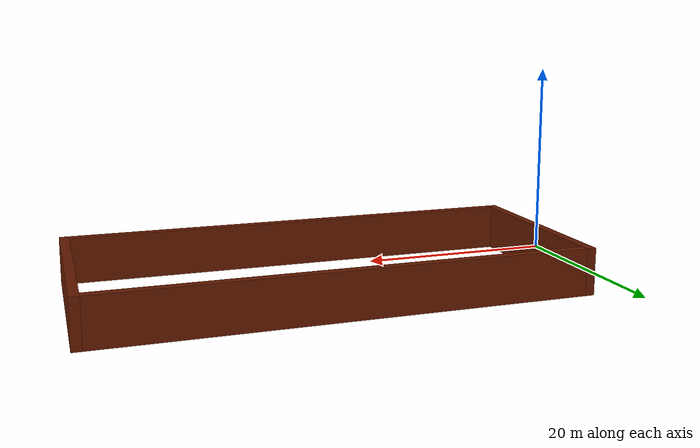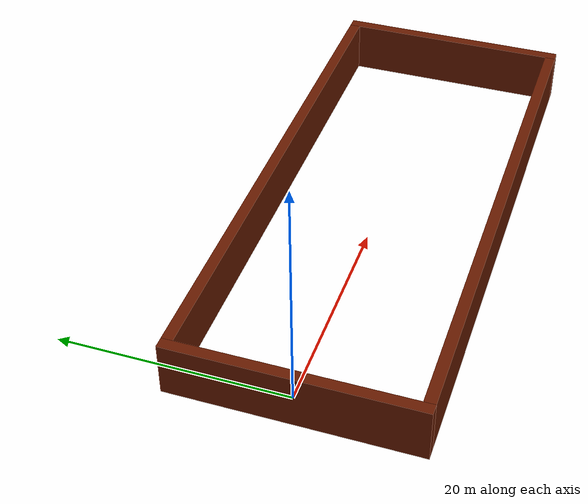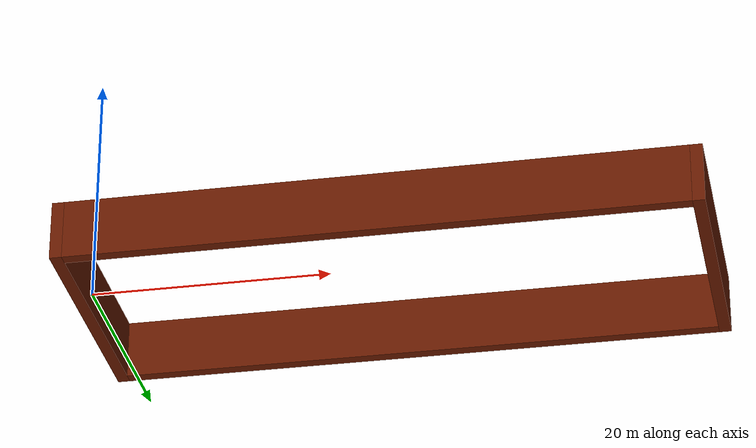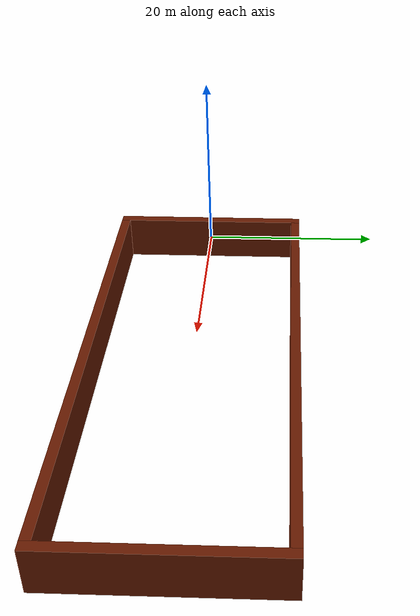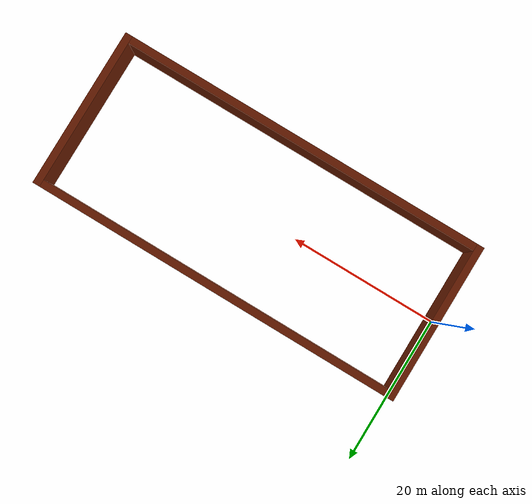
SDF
<?xml version="1.0"?>
<sdf version="1.6">
  <model name="Mur_Piscine_v1">
    <static>true</static>
    <link name="Mur1">
      <inertial>
        <mass>1000</mass>
        <inertia>
          <ixx>42416.67</ixx>
          <ixy>0</ixy>
          <ixz>0</ixz>
          <iyy>2166.67</iyy>
          <iyz>0</iyz>
          <izz>40416.67</izz>
        </inertia>
      </inertial>

      <collision name="collision">
        <geometry>
          <box>
            <size>1 22 5</size>
          </box>
        </geometry>
      </collision>

      <visual name="visual">
        <geometry>
            <box>
                <size>1 22 5</size>
            </box>
        </geometry>
        <material>
            <ambient>0.4 0.1 0 1</ambient>
            <diffuse>0.4 0.1 0 1</diffuse>
            <specular>0.4 0.1 0 1</specular>
        </material>
      </visual>
    </link>

    <link name="Mur2">
      <pose relative_to="Mur1">25.5 -10.5 0 0 0 0</pose>
      <inertial>
        <mass>1000</mass>
        <inertia>
          <ixx>2166.67</ixx>
          <ixy>0</ixy>
          <ixz>0</ixz>
          <iyy>210417</iyy>
          <iyz>0</iyz>
          <izz>208416</izz>
        </inertia>
      </inertial>

      <collision name="collision">
        <geometry>
          <box>
            <size>50 1 5</size>
          </box>
        </geometry>
      </collision>

      <visual name="visual">
        <geometry>
            <box>
                <size>50 1 5</size>
            </box>
        </geometry>
        <material>
            <ambient>0.4 0.1 0 1</ambient>
            <diffuse>0.4 0.1 0 1</diffuse>
            <specular>0.4 0.1 0 1</specular>
        </material>
      </visual>
    </link>

    <joint name="Mur1_Mur2" type="fixed">
      <parent>Mur1</parent>
      <child>Mur2</child>
    </joint>

    <link name="Mur3">
      <pose relative_to="Mur1">25.5 10.5 0 0 0 0</pose>
      <inertial>
        <mass>1000</mass>
        <inertia>
          <ixx>2166.67</ixx>
          <ixy>0</ixy>
          <ixz>0</ixz>
          <iyy>210417</iyy>
          <iyz>0</iyz>
          <izz>208416</izz>
        </inertia>
      </inertial>

      <collision name="collision">
        <geometry>
          <box>
            <size>50 1 5</size>
          </box>
        </geometry>
      </collision>

      <visual name="visual">
        <geometry>
            <box>
                <size>50 1 5</size>
            </box>
        </geometry>
        <material>
            <ambient>0.4 0.1 0 1</ambient>
            <diffuse>0.4 0.1 0 1</diffuse>
            <specular>0.4 0.1 0 1</specular>
        </material>
      </visual>
    </link>

    <joint name="Mur1_Mur3" type="fixed">
      <parent>Mur1</parent>
      <child>Mur3</child>
    </joint>

    <link name="Mur4">
      <pose relative_to="Mur1">51 0 0 0 0 0</pose>
      <inertial>
        <mass>1000</mass>
        <inertia>
          <ixx>42416.67</ixx>
          <ixy>0</ixy>
          <ixz>0</ixz>
          <iyy>2166.67</iyy>
          <iyz>0</iyz>
          <izz>40416.67</izz>
        </inertia>
      </inertial>

      <collision name="collision">
        <geometry>
          <box>
            <size>1 22 5</size>
          </box>
        </geometry>
      </collision>

      <visual name="visual">
        <geometry>
            <box>
                <size>1 22 5</size>
            </box>
        </geometry>
        <material>
            <ambient>0.4 0.1 0 1</ambient>
            <diffuse>0.4 0.1 0 1</diffuse>
            <specular>0.4 0.1 0 1</specular>
        </material>
      </visual>
    </link>

    <joint name="Mur1_Mur4" type="fixed">
      <parent>Mur1</parent>
      <child>Mur4</child>
    </joint>

  </model>
</sdf>
